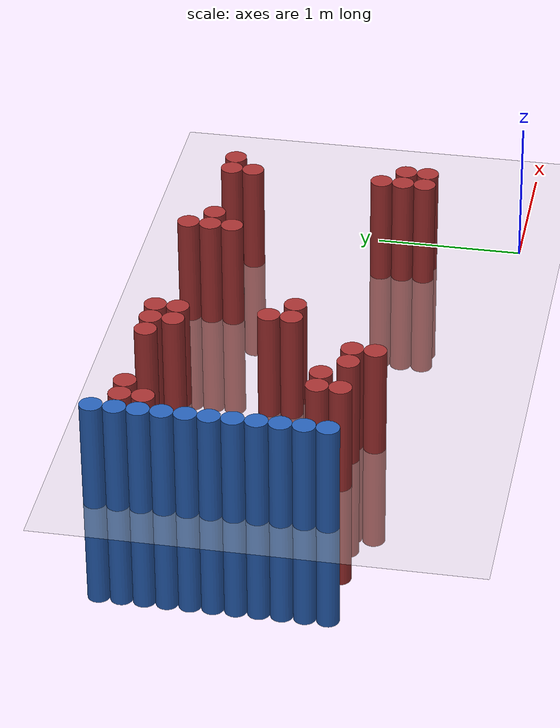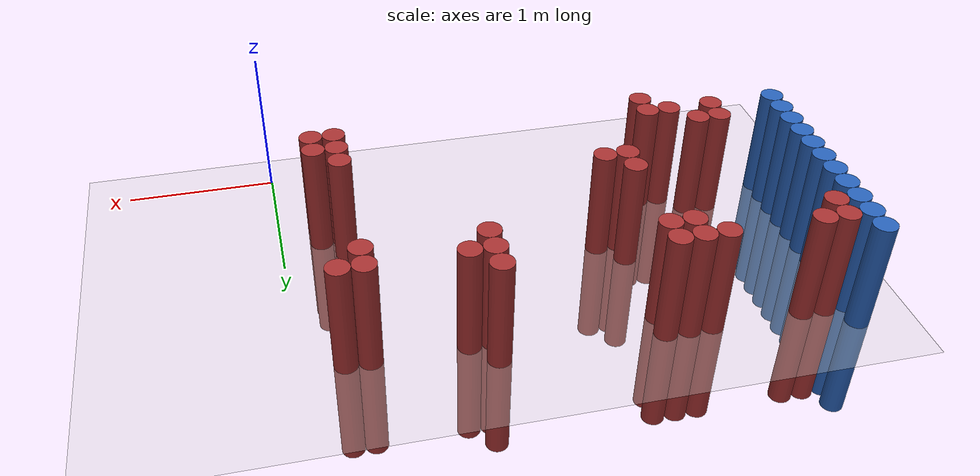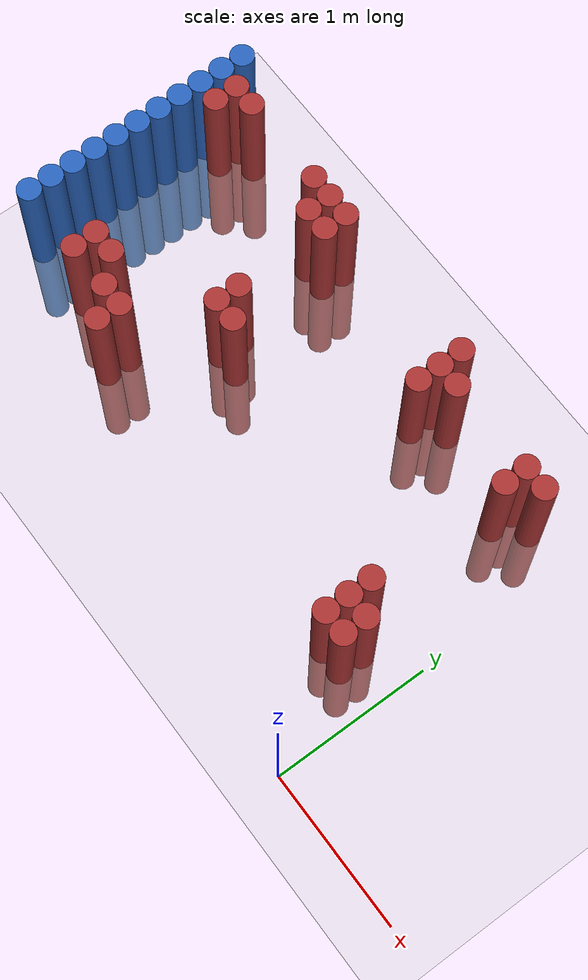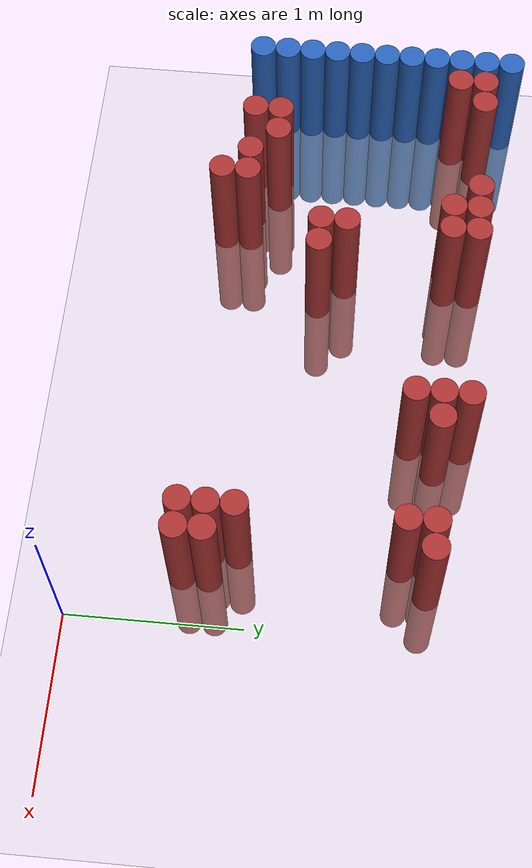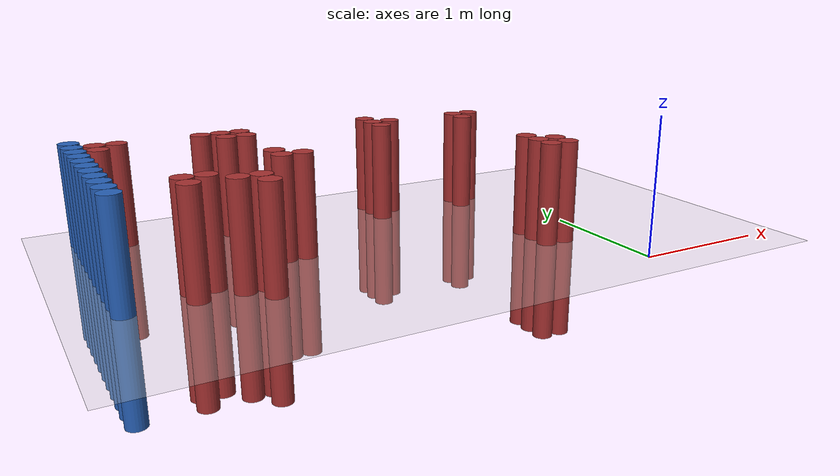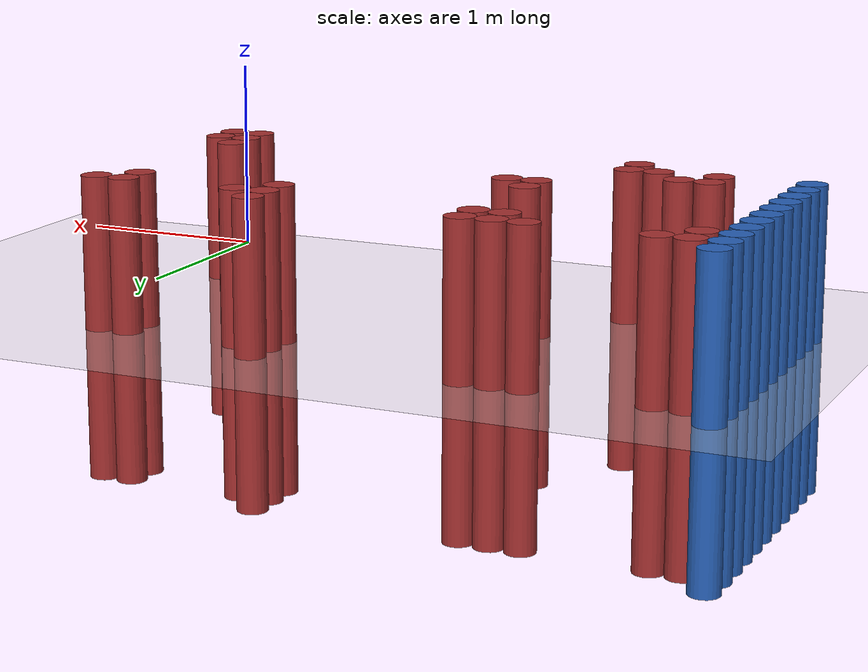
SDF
<sdf version="1.6">
 <world name="default">
  <model name="ground_plane">
   <static>1</static>
   <link name="link">
    <collision name="collision">
     <geometry><plane><normal>0 0 1</normal><size>100 100</size></plane></geometry>
     <surface><friction><ode><mu>100</mu><mu2>50</mu2></ode></friction></surface>
    </collision>
    <visual name="visual">
     <cast_shadows>0</cast_shadows>
     <geometry><plane><normal>0 0 1</normal><size>100 100</size></plane></geometry>
     <material>
      <script><uri>file://media/materials/scripts/gazebo.material</uri><name>Gazebo/Grey</name></script>
     </material>
    </visual>
   </link>
  </model>
  <model name="unit_cylinder_125">
   <static>1</static>
   <pose>-3.425000 0.775000 0.000000 0.000000 0.000000 0.000000</pose>
   <link name="link">
    <inertial>
     <mass>1</mass>
     <inertia><ixx>0.145833</ixx><ixy>0</ixy><ixz>0</ixz><iyy>0.145833</iyy><iyz>0</iyz><izz>0.125</izz></inertia>
    </inertial>
    <collision name="collision">
     <geometry><cylinder><radius>0.075000</radius><length>1.5</length></cylinder></geometry>
    </collision>
    <visual name="visual">
     <geometry><cylinder><radius>0.075000</radius><length>1.5</length></cylinder></geometry>
     <material>
      <ambient>0.152000 0.379000 0.720000 1</ambient>
      <diffuse>0.152000 0.379000 0.720000 1</diffuse>
     </material>
     <material>
      <script><name>Gazebo/Grey</name><uri>file://media/materials/scripts/gazebo.material</uri></script>
     </material>
    </visual>
   </link>
  </model>
  <model name="unit_cylinder_127">
   <static>1</static>
   <pose>-3.425000 0.925000 0.000000 0.000000 0.000000 0.000000</pose>
   <link name="link">
    <inertial>
     <mass>1</mass>
     <inertia><ixx>0.145833</ixx><ixy>0</ixy><ixz>0</ixz><iyy>0.145833</iyy><iyz>0</iyz><izz>0.125</izz></inertia>
    </inertial>
    <collision name="collision">
     <geometry><cylinder><radius>0.075000</radius><length>1.5</length></cylinder></geometry>
    </collision>
    <visual name="visual">
     <geometry><cylinder><radius>0.075000</radius><length>1.5</length></cylinder></geometry>
     <material>
      <ambient>0.152000 0.379000 0.720000 1</ambient>
      <diffuse>0.152000 0.379000 0.720000 1</diffuse>
     </material>
     <material>
      <script><name>Gazebo/Grey</name><uri>file://media/materials/scripts/gazebo.material</uri></script>
     </material>
    </visual>
   </link>
  </model>
  <model name="unit_cylinder_129">
   <static>1</static>
   <pose>-3.425000 1.075000 0.000000 0.000000 0.000000 0.000000</pose>
   <link name="link">
    <inertial>
     <mass>1</mass>
     <inertia><ixx>0.145833</ixx><ixy>0</ixy><ixz>0</ixz><iyy>0.145833</iyy><iyz>0</iyz><izz>0.125</izz></inertia>
    </inertial>
    <collision name="collision">
     <geometry><cylinder><radius>0.075000</radius><length>1.5</length></cylinder></geometry>
    </collision>
    <visual name="visual">
     <geometry><cylinder><radius>0.075000</radius><length>1.5</length></cylinder></geometry>
     <material>
      <ambient>0.152000 0.379000 0.720000 1</ambient>
      <diffuse>0.152000 0.379000 0.720000 1</diffuse>
     </material>
     <material>
      <script><name>Gazebo/Grey</name><uri>file://media/materials/scripts/gazebo.material</uri></script>
     </material>
    </visual>
   </link>
  </model>
  <model name="unit_cylinder_131">
   <static>1</static>
   <pose>-3.425000 1.225000 0.000000 0.000000 0.000000 0.000000</pose>
   <link name="link">
    <inertial>
     <mass>1</mass>
     <inertia><ixx>0.145833</ixx><ixy>0</ixy><ixz>0</ixz><iyy>0.145833</iyy><iyz>0</iyz><izz>0.125</izz></inertia>
    </inertial>
    <collision name="collision">
     <geometry><cylinder><radius>0.075000</radius><length>1.5</length></cylinder></geometry>
    </collision>
    <visual name="visual">
     <geometry><cylinder><radius>0.075000</radius><length>1.5</length></cylinder></geometry>
     <material>
      <ambient>0.152000 0.379000 0.720000 1</ambient>
      <diffuse>0.152000 0.379000 0.720000 1</diffuse>
     </material>
     <material>
      <script><name>Gazebo/Grey</name><uri>file://media/materials/scripts/gazebo.material</uri></script>
     </material>
    </visual>
   </link>
  </model>
  <model name="unit_cylinder_133">
   <static>1</static>
   <pose>-3.425000 1.375000 0.000000 0.000000 0.000000 0.000000</pose>
   <link name="link">
    <inertial>
     <mass>1</mass>
     <inertia><ixx>0.145833</ixx><ixy>0</ixy><ixz>0</ixz><iyy>0.145833</iyy><iyz>0</iyz><izz>0.125</izz></inertia>
    </inertial>
    <collision name="collision">
     <geometry><cylinder><radius>0.075000</radius><length>1.5</length></cylinder></geometry>
    </collision>
    <visual name="visual">
     <geometry><cylinder><radius>0.075000</radius><length>1.5</length></cylinder></geometry>
     <material>
      <ambient>0.152000 0.379000 0.720000 1</ambient>
      <diffuse>0.152000 0.379000 0.720000 1</diffuse>
     </material>
     <material>
      <script><name>Gazebo/Grey</name><uri>file://media/materials/scripts/gazebo.material</uri></script>
     </material>
    </visual>
   </link>
  </model>
  <model name="unit_cylinder_135">
   <static>1</static>
   <pose>-3.425000 1.525000 0.000000 0.000000 0.000000 0.000000</pose>
   <link name="link">
    <inertial>
     <mass>1</mass>
     <inertia><ixx>0.145833</ixx><ixy>0</ixy><ixz>0</ixz><iyy>0.145833</iyy><iyz>0</iyz><izz>0.125</izz></inertia>
    </inertial>
    <collision name="collision">
     <geometry><cylinder><radius>0.075000</radius><length>1.5</length></cylinder></geometry>
    </collision>
    <visual name="visual">
     <geometry><cylinder><radius>0.075000</radius><length>1.5</length></cylinder></geometry>
     <material>
      <ambient>0.152000 0.379000 0.720000 1</ambient>
      <diffuse>0.152000 0.379000 0.720000 1</diffuse>
     </material>
     <material>
      <script><name>Gazebo/Grey</name><uri>file://media/materials/scripts/gazebo.material</uri></script>
     </material>
    </visual>
   </link>
  </model>
  <model name="unit_cylinder_137">
   <static>1</static>
   <pose>-3.425000 1.675000 0.000000 0.000000 0.000000 0.000000</pose>
   <link name="link">
    <inertial>
     <mass>1</mass>
     <inertia><ixx>0.145833</ixx><ixy>0</ixy><ixz>0</ixz><iyy>0.145833</iyy><iyz>0</iyz><izz>0.125</izz></inertia>
    </inertial>
    <collision name="collision">
     <geometry><cylinder><radius>0.075000</radius><length>1.5</length></cylinder></geometry>
    </collision>
    <visual name="visual">
     <geometry><cylinder><radius>0.075000</radius><length>1.5</length></cylinder></geometry>
     <material>
      <ambient>0.152000 0.379000 0.720000 1</ambient>
      <diffuse>0.152000 0.379000 0.720000 1</diffuse>
     </material>
     <material>
      <script><name>Gazebo/Grey</name><uri>file://media/materials/scripts/gazebo.material</uri></script>
     </material>
    </visual>
   </link>
  </model>
  <model name="unit_cylinder_139">
   <static>1</static>
   <pose>-3.425000 1.825000 0.000000 0.000000 0.000000 0.000000</pose>
   <link name="link">
    <inertial>
     <mass>1</mass>
     <inertia><ixx>0.145833</ixx><ixy>0</ixy><ixz>0</ixz><iyy>0.145833</iyy><iyz>0</iyz><izz>0.125</izz></inertia>
    </inertial>
    <collision name="collision">
     <geometry><cylinder><radius>0.075000</radius><length>1.5</length></cylinder></geometry>
    </collision>
    <visual name="visual">
     <geometry><cylinder><radius>0.075000</radius><length>1.5</length></cylinder></geometry>
     <material>
      <ambient>0.152000 0.379000 0.720000 1</ambient>
      <diffuse>0.152000 0.379000 0.720000 1</diffuse>
     </material>
     <material>
      <script><name>Gazebo/Grey</name><uri>file://media/materials/scripts/gazebo.material</uri></script>
     </material>
    </visual>
   </link>
  </model>
  <model name="unit_cylinder_141">
   <static>1</static>
   <pose>-3.425000 1.975000 0.000000 0.000000 0.000000 0.000000</pose>
   <link name="link">
    <inertial>
     <mass>1</mass>
     <inertia><ixx>0.145833</ixx><ixy>0</ixy><ixz>0</ixz><iyy>0.145833</iyy><iyz>0</iyz><izz>0.125</izz></inertia>
    </inertial>
    <collision name="collision">
     <geometry><cylinder><radius>0.075000</radius><length>1.5</length></cylinder></geometry>
    </collision>
    <visual name="visual">
     <geometry><cylinder><radius>0.075000</radius><length>1.5</length></cylinder></geometry>
     <material>
      <ambient>0.152000 0.379000 0.720000 1</ambient>
      <diffuse>0.152000 0.379000 0.720000 1</diffuse>
     </material>
     <material>
      <script><name>Gazebo/Grey</name><uri>file://media/materials/scripts/gazebo.material</uri></script>
     </material>
    </visual>
   </link>
  </model>
  <model name="unit_cylinder_143">
   <static>1</static>
   <pose>-3.425000 2.125000 0.000000 0.000000 0.000000 0.000000</pose>
   <link name="link">
    <inertial>
     <mass>1</mass>
     <inertia><ixx>0.145833</ixx><ixy>0</ixy><ixz>0</ixz><iyy>0.145833</iyy><iyz>0</iyz><izz>0.125</izz></inertia>
    </inertial>
    <collision name="collision">
     <geometry><cylinder><radius>0.075000</radius><length>1.5</length></cylinder></geometry>
    </collision>
    <visual name="visual">
     <geometry><cylinder><radius>0.075000</radius><length>1.5</length></cylinder></geometry>
     <material>
      <ambient>0.152000 0.379000 0.720000 1</ambient>
      <diffuse>0.152000 0.379000 0.720000 1</diffuse>
     </material>
     <material>
      <script><name>Gazebo/Grey</name><uri>file://media/materials/scripts/gazebo.material</uri></script>
     </material>
    </visual>
   </link>
  </model>
  <model name="unit_cylinder_145">
   <static>1</static>
   <pose>-3.425000 2.275000 0.000000 0.000000 0.000000 0.000000</pose>
   <link name="link">
    <inertial>
     <mass>1</mass>
     <inertia><ixx>0.145833</ixx><ixy>0</ixy><ixz>0</ixz><iyy>0.145833</iyy><iyz>0</iyz><izz>0.125</izz></inertia>
    </inertial>
    <collision name="collision">
     <geometry><cylinder><radius>0.075000</radius><length>1.5</length></cylinder></geometry>
    </collision>
    <visual name="visual">
     <geometry><cylinder><radius>0.075000</radius><length>1.5</length></cylinder></geometry>
     <material>
      <ambient>0.152000 0.379000 0.720000 1</ambient>
      <diffuse>0.152000 0.379000 0.720000 1</diffuse>
     </material>
     <material>
      <script><name>Gazebo/Grey</name><uri>file://media/materials/scripts/gazebo.material</uri></script>
     </material>
    </visual>
   </link>
  </model>
  <model name="unit_cylinder_226">
   <static>1</static>
   <pose>-3.425000 0.775000 0.000000 0.000000 0.000000 0.000000</pose>
   <link name="link">
    <inertial>
     <mass>1</mass>
     <inertia><ixx>0.145833</ixx><ixy>0</ixy><ixz>0</ixz><iyy>0.145833</iyy><iyz>0</iyz><izz>0.125</izz></inertia>
    </inertial>
    <collision name="collision">
     <geometry><cylinder><radius>0.075000</radius><length>1.5</length></cylinder></geometry>
    </collision>
    <visual name="visual">
     <geometry><cylinder><radius>0.075000</radius><length>1.5</length></cylinder></geometry>
     <material>
      <ambient>0.152000 0.379000 0.720000 1</ambient>
      <diffuse>0.152000 0.379000 0.720000 1</diffuse>
     </material>
     <material>
      <script><name>Gazebo/Grey</name><uri>file://media/materials/scripts/gazebo.material</uri></script>
     </material>
    </visual>
   </link>
  </model>
  <model name="unit_cylinder_227">
   <static>1</static>
   <pose>-3.425000 0.925000 0.000000 0.000000 0.000000 0.000000</pose>
   <link name="link">
    <inertial>
     <mass>1</mass>
     <inertia><ixx>0.145833</ixx><ixy>0</ixy><ixz>0</ixz><iyy>0.145833</iyy><iyz>0</iyz><izz>0.125</izz></inertia>
    </inertial>
    <collision name="collision">
     <geometry><cylinder><radius>0.075000</radius><length>1.5</length></cylinder></geometry>
    </collision>
    <visual name="visual">
     <geometry><cylinder><radius>0.075000</radius><length>1.5</length></cylinder></geometry>
     <material>
      <ambient>0.152000 0.379000 0.720000 1</ambient>
      <diffuse>0.152000 0.379000 0.720000 1</diffuse>
     </material>
     <material>
      <script><name>Gazebo/Grey</name><uri>file://media/materials/scripts/gazebo.material</uri></script>
     </material>
    </visual>
   </link>
  </model>
  <model name="unit_cylinder_228">
   <static>1</static>
   <pose>-3.425000 1.075000 0.000000 0.000000 0.000000 0.000000</pose>
   <link name="link">
    <inertial>
     <mass>1</mass>
     <inertia><ixx>0.145833</ixx><ixy>0</ixy><ixz>0</ixz><iyy>0.145833</iyy><iyz>0</iyz><izz>0.125</izz></inertia>
    </inertial>
    <collision name="collision">
     <geometry><cylinder><radius>0.075000</radius><length>1.5</length></cylinder></geometry>
    </collision>
    <visual name="visual">
     <geometry><cylinder><radius>0.075000</radius><length>1.5</length></cylinder></geometry>
     <material>
      <ambient>0.152000 0.379000 0.720000 1</ambient>
      <diffuse>0.152000 0.379000 0.720000 1</diffuse>
     </material>
     <material>
      <script><name>Gazebo/Grey</name><uri>file://media/materials/scripts/gazebo.material</uri></script>
     </material>
    </visual>
   </link>
  </model>
  <model name="unit_cylinder_229">
   <static>1</static>
   <pose>-3.425000 1.225000 0.000000 0.000000 0.000000 0.000000</pose>
   <link name="link">
    <inertial>
     <mass>1</mass>
     <inertia><ixx>0.145833</ixx><ixy>0</ixy><ixz>0</ixz><iyy>0.145833</iyy><iyz>0</iyz><izz>0.125</izz></inertia>
    </inertial>
    <collision name="collision">
     <geometry><cylinder><radius>0.075000</radius><length>1.5</length></cylinder></geometry>
    </collision>
    <visual name="visual">
     <geometry><cylinder><radius>0.075000</radius><length>1.5</length></cylinder></geometry>
     <material>
      <ambient>0.152000 0.379000 0.720000 1</ambient>
      <diffuse>0.152000 0.379000 0.720000 1</diffuse>
     </material>
     <material>
      <script><name>Gazebo/Grey</name><uri>file://media/materials/scripts/gazebo.material</uri></script>
     </material>
    </visual>
   </link>
  </model>
  <model name="unit_cylinder_230">
   <static>1</static>
   <pose>-3.425000 1.375000 0.000000 0.000000 0.000000 0.000000</pose>
   <link name="link">
    <inertial>
     <mass>1</mass>
     <inertia><ixx>0.145833</ixx><ixy>0</ixy><ixz>0</ixz><iyy>0.145833</iyy><iyz>0</iyz><izz>0.125</izz></inertia>
    </inertial>
    <collision name="collision">
     <geometry><cylinder><radius>0.075000</radius><length>1.5</length></cylinder></geometry>
    </collision>
    <visual name="visual">
     <geometry><cylinder><radius>0.075000</radius><length>1.5</length></cylinder></geometry>
     <material>
      <ambient>0.152000 0.379000 0.720000 1</ambient>
      <diffuse>0.152000 0.379000 0.720000 1</diffuse>
     </material>
     <material>
      <script><name>Gazebo/Grey</name><uri>file://media/materials/scripts/gazebo.material</uri></script>
     </material>
    </visual>
   </link>
  </model>
  <model name="unit_cylinder_231">
   <static>1</static>
   <pose>-3.425000 1.525000 0.000000 0.000000 0.000000 0.000000</pose>
   <link name="link">
    <inertial>
     <mass>1</mass>
     <inertia><ixx>0.145833</ixx><ixy>0</ixy><ixz>0</ixz><iyy>0.145833</iyy><iyz>0</iyz><izz>0.125</izz></inertia>
    </inertial>
    <collision name="collision">
     <geometry><cylinder><radius>0.075000</radius><length>1.5</length></cylinder></geometry>
    </collision>
    <visual name="visual">
     <geometry><cylinder><radius>0.075000</radius><length>1.5</length></cylinder></geometry>
     <material>
      <ambient>0.152000 0.379000 0.720000 1</ambient>
      <diffuse>0.152000 0.379000 0.720000 1</diffuse>
     </material>
     <material>
      <script><name>Gazebo/Grey</name><uri>file://media/materials/scripts/gazebo.material</uri></script>
     </material>
    </visual>
   </link>
  </model>
  <model name="unit_cylinder_232">
   <static>1</static>
   <pose>-3.425000 1.675000 0.000000 0.000000 0.000000 0.000000</pose>
   <link name="link">
    <inertial>
     <mass>1</mass>
     <inertia><ixx>0.145833</ixx><ixy>0</ixy><ixz>0</ixz><iyy>0.145833</iyy><iyz>0</iyz><izz>0.125</izz></inertia>
    </inertial>
    <collision name="collision">
     <geometry><cylinder><radius>0.075000</radius><length>1.5</length></cylinder></geometry>
    </collision>
    <visual name="visual">
     <geometry><cylinder><radius>0.075000</radius><length>1.5</length></cylinder></geometry>
     <material>
      <ambient>0.152000 0.379000 0.720000 1</ambient>
      <diffuse>0.152000 0.379000 0.720000 1</diffuse>
     </material>
     <material>
      <script><name>Gazebo/Grey</name><uri>file://media/materials/scripts/gazebo.material</uri></script>
     </material>
    </visual>
   </link>
  </model>
  <model name="unit_cylinder_233">
   <static>1</static>
   <pose>-3.425000 1.825000 0.000000 0.000000 0.000000 0.000000</pose>
   <link name="link">
    <inertial>
     <mass>1</mass>
     <inertia><ixx>0.145833</ixx><ixy>0</ixy><ixz>0</ixz><iyy>0.145833</iyy><iyz>0</iyz><izz>0.125</izz></inertia>
    </inertial>
    <collision name="collision">
     <geometry><cylinder><radius>0.075000</radius><length>1.5</length></cylinder></geometry>
    </collision>
    <visual name="visual">
     <geometry><cylinder><radius>0.075000</radius><length>1.5</length></cylinder></geometry>
     <material>
      <ambient>0.152000 0.379000 0.720000 1</ambient>
      <diffuse>0.152000 0.379000 0.720000 1</diffuse>
     </material>
     <material>
      <script><name>Gazebo/Grey</name><uri>file://media/materials/scripts/gazebo.material</uri></script>
     </material>
    </visual>
   </link>
  </model>
  <model name="unit_cylinder_234">
   <static>1</static>
   <pose>-3.425000 1.975000 0.000000 0.000000 0.000000 0.000000</pose>
   <link name="link">
    <inertial>
     <mass>1</mass>
     <inertia><ixx>0.145833</ixx><ixy>0</ixy><ixz>0</ixz><iyy>0.145833</iyy><iyz>0</iyz><izz>0.125</izz></inertia>
    </inertial>
    <collision name="collision">
     <geometry><cylinder><radius>0.075000</radius><length>1.5</length></cylinder></geometry>
    </collision>
    <visual name="visual">
     <geometry><cylinder><radius>0.075000</radius><length>1.5</length></cylinder></geometry>
     <material>
      <ambient>0.152000 0.379000 0.720000 1</ambient>
      <diffuse>0.152000 0.379000 0.720000 1</diffuse>
     </material>
     <material>
      <script><name>Gazebo/Grey</name><uri>file://media/materials/scripts/gazebo.material</uri></script>
     </material>
    </visual>
   </link>
  </model>
  <model name="unit_cylinder_235">
   <static>1</static>
   <pose>-3.425000 2.125000 0.000000 0.000000 0.000000 0.000000</pose>
   <link name="link">
    <inertial>
     <mass>1</mass>
     <inertia><ixx>0.145833</ixx><ixy>0</ixy><ixz>0</ixz><iyy>0.145833</iyy><iyz>0</iyz><izz>0.125</izz></inertia>
    </inertial>
    <collision name="collision">
     <geometry><cylinder><radius>0.075000</radius><length>1.5</length></cylinder></geometry>
    </collision>
    <visual name="visual">
     <geometry><cylinder><radius>0.075000</radius><length>1.5</length></cylinder></geometry>
     <material>
      <ambient>0.152000 0.379000 0.720000 1</ambient>
      <diffuse>0.152000 0.379000 0.720000 1</diffuse>
     </material>
     <material>
      <script><name>Gazebo/Grey</name><uri>file://media/materials/scripts/gazebo.material</uri></script>
     </material>
    </visual>
   </link>
  </model>
  <model name="unit_cylinder_236">
   <static>1</static>
   <pose>-3.425000 2.275000 0.000000 0.000000 0.000000 0.000000</pose>
   <link name="link">
    <inertial>
     <mass>1</mass>
     <inertia><ixx>0.145833</ixx><ixy>0</ixy><ixz>0</ixz><iyy>0.145833</iyy><iyz>0</iyz><izz>0.125</izz></inertia>
    </inertial>
    <collision name="collision">
     <geometry><cylinder><radius>0.075000</radius><length>1.5</length></cylinder></geometry>
    </collision>
    <visual name="visual">
     <geometry><cylinder><radius>0.075000</radius><length>1.5</length></cylinder></geometry>
     <material>
      <ambient>0.152000 0.379000 0.720000 1</ambient>
      <diffuse>0.152000 0.379000 0.720000 1</diffuse>
     </material>
     <material>
      <script><name>Gazebo/Grey</name><uri>file://media/materials/scripts/gazebo.material</uri></script>
     </material>
    </visual>
   </link>
  </model>
  <model name="unit_cylinder_267">
   <static>1</static>
   <pose>-3.275000 1.975000 0.000000 0.000000 0.000000 0.000000</pose>
   <link name="link">
    <inertial>
     <mass>1</mass>
     <inertia><ixx>0.145833</ixx><ixy>0</ixy><ixz>0</ixz><iyy>0.145833</iyy><iyz>0</iyz><izz>0.125</izz></inertia>
    </inertial>
    <collision name="collision">
     <geometry><cylinder><radius>0.075000</radius><length>1.5</length></cylinder></geometry>
    </collision>
    <visual name="visual">
     <geometry><cylinder><radius>0.075000</radius><length>1.5</length></cylinder></geometry>
     <material>
      <ambient>0.648000 0.192000 0.192000 1</ambient>
      <diffuse>0.648000 0.192000 0.192000 1</diffuse>
     </material>
     <material>
      <script><name>Gazebo/Grey</name><uri>file://media/materials/scripts/gazebo.material</uri></script>
     </material>
    </visual>
   </link>
  </model>
  <model name="unit_cylinder_268">
   <static>1</static>
   <pose>-3.275000 2.125000 0.000000 0.000000 0.000000 0.000000</pose>
   <link name="link">
    <inertial>
     <mass>1</mass>
     <inertia><ixx>0.145833</ixx><ixy>0</ixy><ixz>0</ixz><iyy>0.145833</iyy><iyz>0</iyz><izz>0.125</izz></inertia>
    </inertial>
    <collision name="collision">
     <geometry><cylinder><radius>0.075000</radius><length>1.5</length></cylinder></geometry>
    </collision>
    <visual name="visual">
     <geometry><cylinder><radius>0.075000</radius><length>1.5</length></cylinder></geometry>
     <material>
      <ambient>0.648000 0.192000 0.192000 1</ambient>
      <diffuse>0.648000 0.192000 0.192000 1</diffuse>
     </material>
     <material>
      <script><name>Gazebo/Grey</name><uri>file://media/materials/scripts/gazebo.material</uri></script>
     </material>
    </visual>
   </link>
  </model>
  <model name="unit_cylinder_279">
   <static>1</static>
   <pose>-3.125000 2.125000 0.000000 0.000000 0.000000 0.000000</pose>
   <link name="link">
    <inertial>
     <mass>1</mass>
     <inertia><ixx>0.145833</ixx><ixy>0</ixy><ixz>0</ixz><iyy>0.145833</iyy><iyz>0</iyz><izz>0.125</izz></inertia>
    </inertial>
    <collision name="collision">
     <geometry><cylinder><radius>0.075000</radius><length>1.5</length></cylinder></geometry>
    </collision>
    <visual name="visual">
     <geometry><cylinder><radius>0.075000</radius><length>1.5</length></cylinder></geometry>
     <material>
      <ambient>0.648000 0.192000 0.192000 1</ambient>
      <diffuse>0.648000 0.192000 0.192000 1</diffuse>
     </material>
     <material>
      <script><name>Gazebo/Grey</name><uri>file://media/materials/scripts/gazebo.material</uri></script>
     </material>
    </visual>
   </link>
  </model>
  <model name="unit_cylinder_289">
   <static>1</static>
   <pose>-2.975000 0.775000 0.000000 0.000000 0.000000 0.000000</pose>
   <link name="link">
    <inertial>
     <mass>1</mass>
     <inertia><ixx>0.145833</ixx><ixy>0</ixy><ixz>0</ixz><iyy>0.145833</iyy><iyz>0</iyz><izz>0.125</izz></inertia>
    </inertial>
    <collision name="collision">
     <geometry><cylinder><radius>0.075000</radius><length>1.5</length></cylinder></geometry>
    </collision>
    <visual name="visual">
     <geometry><cylinder><radius>0.075000</radius><length>1.5</length></cylinder></geometry>
     <material>
      <ambient>0.648000 0.192000 0.192000 1</ambient>
      <diffuse>0.648000 0.192000 0.192000 1</diffuse>
     </material>
     <material>
      <script><name>Gazebo/Grey</name><uri>file://media/materials/scripts/gazebo.material</uri></script>
     </material>
    </visual>
   </link>
  </model>
  <model name="unit_cylinder_290">
   <static>1</static>
   <pose>-2.975000 0.925000 0.000000 0.000000 0.000000 0.000000</pose>
   <link name="link">
    <inertial>
     <mass>1</mass>
     <inertia><ixx>0.145833</ixx><ixy>0</ixy><ixz>0</ixz><iyy>0.145833</iyy><iyz>0</iyz><izz>0.125</izz></inertia>
    </inertial>
    <collision name="collision">
     <geometry><cylinder><radius>0.075000</radius><length>1.5</length></cylinder></geometry>
    </collision>
    <visual name="visual">
     <geometry><cylinder><radius>0.075000</radius><length>1.5</length></cylinder></geometry>
     <material>
      <ambient>0.648000 0.192000 0.192000 1</ambient>
      <diffuse>0.648000 0.192000 0.192000 1</diffuse>
     </material>
     <material>
      <script><name>Gazebo/Grey</name><uri>file://media/materials/scripts/gazebo.material</uri></script>
     </material>
    </visual>
   </link>
  </model>
  <model name="unit_cylinder_297">
   <static>1</static>
   <pose>-2.825000 0.925000 0.000000 0.000000 0.000000 0.000000</pose>
   <link name="link">
    <inertial>
     <mass>1</mass>
     <inertia><ixx>0.145833</ixx><ixy>0</ixy><ixz>0</ixz><iyy>0.145833</iyy><iyz>0</iyz><izz>0.125</izz></inertia>
    </inertial>
    <collision name="collision">
     <geometry><cylinder><radius>0.075000</radius><length>1.5</length></cylinder></geometry>
    </collision>
    <visual name="visual">
     <geometry><cylinder><radius>0.075000</radius><length>1.5</length></cylinder></geometry>
     <material>
      <ambient>0.648000 0.192000 0.192000 1</ambient>
      <diffuse>0.648000 0.192000 0.192000 1</diffuse>
     </material>
     <material>
      <script><name>Gazebo/Grey</name><uri>file://media/materials/scripts/gazebo.material</uri></script>
     </material>
    </visual>
   </link>
  </model>
  <model name="unit_cylinder_304">
   <static>1</static>
   <pose>-2.675000 0.775000 0.000000 0.000000 0.000000 0.000000</pose>
   <link name="link">
    <inertial>
     <mass>1</mass>
     <inertia><ixx>0.145833</ixx><ixy>0</ixy><ixz>0</ixz><iyy>0.145833</iyy><iyz>0</iyz><izz>0.125</izz></inertia>
    </inertial>
    <collision name="collision">
     <geometry><cylinder><radius>0.075000</radius><length>1.5</length></cylinder></geometry>
    </collision>
    <visual name="visual">
     <geometry><cylinder><radius>0.075000</radius><length>1.5</length></cylinder></geometry>
     <material>
      <ambient>0.648000 0.192000 0.192000 1</ambient>
      <diffuse>0.648000 0.192000 0.192000 1</diffuse>
     </material>
     <material>
      <script><name>Gazebo/Grey</name><uri>file://media/materials/scripts/gazebo.material</uri></script>
     </material>
    </visual>
   </link>
  </model>
  <model name="unit_cylinder_313">
   <static>1</static>
   <pose>-2.525000 0.625000 0.000000 0.000000 0.000000 0.000000</pose>
   <link name="link">
    <inertial>
     <mass>1</mass>
     <inertia><ixx>0.145833</ixx><ixy>0</ixy><ixz>0</ixz><iyy>0.145833</iyy><iyz>0</iyz><izz>0.125</izz></inertia>
    </inertial>
    <collision name="collision">
     <geometry><cylinder><radius>0.075000</radius><length>1.5</length></cylinder></geometry>
    </collision>
    <visual name="visual">
     <geometry><cylinder><radius>0.075000</radius><length>1.5</length></cylinder></geometry>
     <material>
      <ambient>0.648000 0.192000 0.192000 1</ambient>
      <diffuse>0.648000 0.192000 0.192000 1</diffuse>
     </material>
     <material>
      <script><name>Gazebo/Grey</name><uri>file://media/materials/scripts/gazebo.material</uri></script>
     </material>
    </visual>
   </link>
  </model>
  <model name="unit_cylinder_314">
   <static>1</static>
   <pose>-2.525000 0.775000 0.000000 0.000000 0.000000 0.000000</pose>
   <link name="link">
    <inertial>
     <mass>1</mass>
     <inertia><ixx>0.145833</ixx><ixy>0</ixy><ixz>0</ixz><iyy>0.145833</iyy><iyz>0</iyz><izz>0.125</izz></inertia>
    </inertial>
    <collision name="collision">
     <geometry><cylinder><radius>0.075000</radius><length>1.5</length></cylinder></geometry>
    </collision>
    <visual name="visual">
     <geometry><cylinder><radius>0.075000</radius><length>1.5</length></cylinder></geometry>
     <material>
      <ambient>0.648000 0.192000 0.192000 1</ambient>
      <diffuse>0.648000 0.192000 0.192000 1</diffuse>
     </material>
     <material>
      <script><name>Gazebo/Grey</name><uri>file://media/materials/scripts/gazebo.material</uri></script>
     </material>
    </visual>
   </link>
  </model>
  <model name="unit_cylinder_315">
   <static>1</static>
   <pose>-2.525000 2.125000 0.000000 0.000000 0.000000 0.000000</pose>
   <link name="link">
    <inertial>
     <mass>1</mass>
     <inertia><ixx>0.145833</ixx><ixy>0</ixy><ixz>0</ixz><iyy>0.145833</iyy><iyz>0</iyz><izz>0.125</izz></inertia>
    </inertial>
    <collision name="collision">
     <geometry><cylinder><radius>0.075000</radius><length>1.5</length></cylinder></geometry>
    </collision>
    <visual name="visual">
     <geometry><cylinder><radius>0.075000</radius><length>1.5</length></cylinder></geometry>
     <material>
      <ambient>0.648000 0.192000 0.192000 1</ambient>
      <diffuse>0.648000 0.192000 0.192000 1</diffuse>
     </material>
     <material>
      <script><name>Gazebo/Grey</name><uri>file://media/materials/scripts/gazebo.material</uri></script>
     </material>
    </visual>
   </link>
  </model>
  <model name="unit_cylinder_325">
   <static>1</static>
   <pose>-2.375000 1.975000 0.000000 0.000000 0.000000 0.000000</pose>
   <link name="link">
    <inertial>
     <mass>1</mass>
     <inertia><ixx>0.145833</ixx><ixy>0</ixy><ixz>0</ixz><iyy>0.145833</iyy><iyz>0</iyz><izz>0.125</izz></inertia>
    </inertial>
    <collision name="collision">
     <geometry><cylinder><radius>0.075000</radius><length>1.5</length></cylinder></geometry>
    </collision>
    <visual name="visual">
     <geometry><cylinder><radius>0.075000</radius><length>1.5</length></cylinder></geometry>
     <material>
      <ambient>0.648000 0.192000 0.192000 1</ambient>
      <diffuse>0.648000 0.192000 0.192000 1</diffuse>
     </material>
     <material>
      <script><name>Gazebo/Grey</name><uri>file://media/materials/scripts/gazebo.material</uri></script>
     </material>
    </visual>
   </link>
  </model>
  <model name="unit_cylinder_326">
   <static>1</static>
   <pose>-2.375000 2.125000 0.000000 0.000000 0.000000 0.000000</pose>
   <link name="link">
    <inertial>
     <mass>1</mass>
     <inertia><ixx>0.145833</ixx><ixy>0</ixy><ixz>0</ixz><iyy>0.145833</iyy><iyz>0</iyz><izz>0.125</izz></inertia>
    </inertial>
    <collision name="collision">
     <geometry><cylinder><radius>0.075000</radius><length>1.5</length></cylinder></geometry>
    </collision>
    <visual name="visual">
     <geometry><cylinder><radius>0.075000</radius><length>1.5</length></cylinder></geometry>
     <material>
      <ambient>0.648000 0.192000 0.192000 1</ambient>
      <diffuse>0.648000 0.192000 0.192000 1</diffuse>
     </material>
     <material>
      <script><name>Gazebo/Grey</name><uri>file://media/materials/scripts/gazebo.material</uri></script>
     </material>
    </visual>
   </link>
  </model>
  <model name="unit_cylinder_334">
   <static>1</static>
   <pose>-2.225000 1.225000 0.000000 0.000000 0.000000 0.000000</pose>
   <link name="link">
    <inertial>
     <mass>1</mass>
     <inertia><ixx>0.145833</ixx><ixy>0</ixy><ixz>0</ixz><iyy>0.145833</iyy><iyz>0</iyz><izz>0.125</izz></inertia>
    </inertial>
    <collision name="collision">
     <geometry><cylinder><radius>0.075000</radius><length>1.5</length></cylinder></geometry>
    </collision>
    <visual name="visual">
     <geometry><cylinder><radius>0.075000</radius><length>1.5</length></cylinder></geometry>
     <material>
      <ambient>0.648000 0.192000 0.192000 1</ambient>
      <diffuse>0.648000 0.192000 0.192000 1</diffuse>
     </material>
     <material>
      <script><name>Gazebo/Grey</name><uri>file://media/materials/scripts/gazebo.material</uri></script>
     </material>
    </visual>
   </link>
  </model>
  <model name="unit_cylinder_335">
   <static>1</static>
   <pose>-2.225000 1.375000 0.000000 0.000000 0.000000 0.000000</pose>
   <link name="link">
    <inertial>
     <mass>1</mass>
     <inertia><ixx>0.145833</ixx><ixy>0</ixy><ixz>0</ixz><iyy>0.145833</iyy><iyz>0</iyz><izz>0.125</izz></inertia>
    </inertial>
    <collision name="collision">
     <geometry><cylinder><radius>0.075000</radius><length>1.5</length></cylinder></geometry>
    </collision>
    <visual name="visual">
     <geometry><cylinder><radius>0.075000</radius><length>1.5</length></cylinder></geometry>
     <material>
      <ambient>0.648000 0.192000 0.192000 1</ambient>
      <diffuse>0.648000 0.192000 0.192000 1</diffuse>
     </material>
     <material>
      <script><name>Gazebo/Grey</name><uri>file://media/materials/scripts/gazebo.material</uri></script>
     </material>
    </visual>
   </link>
  </model>
  <model name="unit_cylinder_336">
   <static>1</static>
   <pose>-2.225000 1.975000 0.000000 0.000000 0.000000 0.000000</pose>
   <link name="link">
    <inertial>
     <mass>1</mass>
     <inertia><ixx>0.145833</ixx><ixy>0</ixy><ixz>0</ixz><iyy>0.145833</iyy><iyz>0</iyz><izz>0.125</izz></inertia>
    </inertial>
    <collision name="collision">
     <geometry><cylinder><radius>0.075000</radius><length>1.5</length></cylinder></geometry>
    </collision>
    <visual name="visual">
     <geometry><cylinder><radius>0.075000</radius><length>1.5</length></cylinder></geometry>
     <material>
      <ambient>0.648000 0.192000 0.192000 1</ambient>
      <diffuse>0.648000 0.192000 0.192000 1</diffuse>
     </material>
     <material>
      <script><name>Gazebo/Grey</name><uri>file://media/materials/scripts/gazebo.material</uri></script>
     </material>
    </visual>
   </link>
  </model>
  <model name="unit_cylinder_337">
   <static>1</static>
   <pose>-2.225000 2.125000 0.000000 0.000000 0.000000 0.000000</pose>
   <link name="link">
    <inertial>
     <mass>1</mass>
     <inertia><ixx>0.145833</ixx><ixy>0</ixy><ixz>0</ixz><iyy>0.145833</iyy><iyz>0</iyz><izz>0.125</izz></inertia>
    </inertial>
    <collision name="collision">
     <geometry><cylinder><radius>0.075000</radius><length>1.5</length></cylinder></geometry>
    </collision>
    <visual name="visual">
     <geometry><cylinder><radius>0.075000</radius><length>1.5</length></cylinder></geometry>
     <material>
      <ambient>0.648000 0.192000 0.192000 1</ambient>
      <diffuse>0.648000 0.192000 0.192000 1</diffuse>
     </material>
     <material>
      <script><name>Gazebo/Grey</name><uri>file://media/materials/scripts/gazebo.material</uri></script>
     </material>
    </visual>
   </link>
  </model>
  <model name="unit_cylinder_345">
   <static>1</static>
   <pose>-2.075000 1.225000 0.000000 0.000000 0.000000 0.000000</pose>
   <link name="link">
    <inertial>
     <mass>1</mass>
     <inertia><ixx>0.145833</ixx><ixy>0</ixy><ixz>0</ixz><iyy>0.145833</iyy><iyz>0</iyz><izz>0.125</izz></inertia>
    </inertial>
    <collision name="collision">
     <geometry><cylinder><radius>0.075000</radius><length>1.5</length></cylinder></geometry>
    </collision>
    <visual name="visual">
     <geometry><cylinder><radius>0.075000</radius><length>1.5</length></cylinder></geometry>
     <material>
      <ambient>0.648000 0.192000 0.192000 1</ambient>
      <diffuse>0.648000 0.192000 0.192000 1</diffuse>
     </material>
     <material>
      <script><name>Gazebo/Grey</name><uri>file://media/materials/scripts/gazebo.material</uri></script>
     </material>
    </visual>
   </link>
  </model>
  <model name="unit_cylinder_361">
   <static>1</static>
   <pose>-1.175000 1.825000 0.000000 0.000000 0.000000 0.000000</pose>
   <link name="link">
    <inertial>
     <mass>1</mass>
     <inertia><ixx>0.145833</ixx><ixy>0</ixy><ixz>0</ixz><iyy>0.145833</iyy><iyz>0</iyz><izz>0.125</izz></inertia>
    </inertial>
    <collision name="collision">
     <geometry><cylinder><radius>0.075000</radius><length>1.5</length></cylinder></geometry>
    </collision>
    <visual name="visual">
     <geometry><cylinder><radius>0.075000</radius><length>1.5</length></cylinder></geometry>
     <material>
      <ambient>0.648000 0.192000 0.192000 1</ambient>
      <diffuse>0.648000 0.192000 0.192000 1</diffuse>
     </material>
     <material>
      <script><name>Gazebo/Grey</name><uri>file://media/materials/scripts/gazebo.material</uri></script>
     </material>
    </visual>
   </link>
  </model>
  <model name="unit_cylinder_362">
   <static>1</static>
   <pose>-1.175000 1.975000 0.000000 0.000000 0.000000 0.000000</pose>
   <link name="link">
    <inertial>
     <mass>1</mass>
     <inertia><ixx>0.145833</ixx><ixy>0</ixy><ixz>0</ixz><iyy>0.145833</iyy><iyz>0</iyz><izz>0.125</izz></inertia>
    </inertial>
    <collision name="collision">
     <geometry><cylinder><radius>0.075000</radius><length>1.5</length></cylinder></geometry>
    </collision>
    <visual name="visual">
     <geometry><cylinder><radius>0.075000</radius><length>1.5</length></cylinder></geometry>
     <material>
      <ambient>0.648000 0.192000 0.192000 1</ambient>
      <diffuse>0.648000 0.192000 0.192000 1</diffuse>
     </material>
     <material>
      <script><name>Gazebo/Grey</name><uri>file://media/materials/scripts/gazebo.material</uri></script>
     </material>
    </visual>
   </link>
  </model>
  <model name="unit_cylinder_363">
   <static>1</static>
   <pose>-1.175000 2.125000 0.000000 0.000000 0.000000 0.000000</pose>
   <link name="link">
    <inertial>
     <mass>1</mass>
     <inertia><ixx>0.145833</ixx><ixy>0</ixy><ixz>0</ixz><iyy>0.145833</iyy><iyz>0</iyz><izz>0.125</izz></inertia>
    </inertial>
    <collision name="collision">
     <geometry><cylinder><radius>0.075000</radius><length>1.5</length></cylinder></geometry>
    </collision>
    <visual name="visual">
     <geometry><cylinder><radius>0.075000</radius><length>1.5</length></cylinder></geometry>
     <material>
      <ambient>0.648000 0.192000 0.192000 1</ambient>
      <diffuse>0.648000 0.192000 0.192000 1</diffuse>
     </material>
     <material>
      <script><name>Gazebo/Grey</name><uri>file://media/materials/scripts/gazebo.material</uri></script>
     </material>
    </visual>
   </link>
  </model>
  <model name="unit_cylinder_365">
   <static>1</static>
   <pose>-1.025000 1.975000 0.000000 0.000000 0.000000 0.000000</pose>
   <link name="link">
    <inertial>
     <mass>1</mass>
     <inertia><ixx>0.145833</ixx><ixy>0</ixy><ixz>0</ixz><iyy>0.145833</iyy><iyz>0</iyz><izz>0.125</izz></inertia>
    </inertial>
    <collision name="collision">
     <geometry><cylinder><radius>0.075000</radius><length>1.5</length></cylinder></geometry>
    </collision>
    <visual name="visual">
     <geometry><cylinder><radius>0.075000</radius><length>1.5</length></cylinder></geometry>
     <material>
      <ambient>0.648000 0.192000 0.192000 1</ambient>
      <diffuse>0.648000 0.192000 0.192000 1</diffuse>
     </material>
     <material>
      <script><name>Gazebo/Grey</name><uri>file://media/materials/scripts/gazebo.material</uri></script>
     </material>
    </visual>
   </link>
  </model>
  <model name="unit_cylinder_381">
   <static>1</static>
   <pose>-0.425000 0.625000 0.000000 0.000000 0.000000 0.000000</pose>
   <link name="link">
    <inertial>
     <mass>1</mass>
     <inertia><ixx>0.145833</ixx><ixy>0</ixy><ixz>0</ixz><iyy>0.145833</iyy><iyz>0</iyz><izz>0.125</izz></inertia>
    </inertial>
    <collision name="collision">
     <geometry><cylinder><radius>0.075000</radius><length>1.5</length></cylinder></geometry>
    </collision>
    <visual name="visual">
     <geometry><cylinder><radius>0.075000</radius><length>1.5</length></cylinder></geometry>
     <material>
      <ambient>0.648000 0.192000 0.192000 1</ambient>
      <diffuse>0.648000 0.192000 0.192000 1</diffuse>
     </material>
     <material>
      <script><name>Gazebo/Grey</name><uri>file://media/materials/scripts/gazebo.material</uri></script>
     </material>
    </visual>
   </link>
  </model>
  <model name="unit_cylinder_382">
   <static>1</static>
   <pose>-0.425000 0.775000 0.000000 0.000000 0.000000 0.000000</pose>
   <link name="link">
    <inertial>
     <mass>1</mass>
     <inertia><ixx>0.145833</ixx><ixy>0</ixy><ixz>0</ixz><iyy>0.145833</iyy><iyz>0</iyz><izz>0.125</izz></inertia>
    </inertial>
    <collision name="collision">
     <geometry><cylinder><radius>0.075000</radius><length>1.5</length></cylinder></geometry>
    </collision>
    <visual name="visual">
     <geometry><cylinder><radius>0.075000</radius><length>1.5</length></cylinder></geometry>
     <material>
      <ambient>0.648000 0.192000 0.192000 1</ambient>
      <diffuse>0.648000 0.192000 0.192000 1</diffuse>
     </material>
     <material>
      <script><name>Gazebo/Grey</name><uri>file://media/materials/scripts/gazebo.material</uri></script>
     </material>
    </visual>
   </link>
  </model>
  <model name="unit_cylinder_383">
   <static>1</static>
   <pose>-0.425000 0.925000 0.000000 0.000000 0.000000 0.000000</pose>
   <link name="link">
    <inertial>
     <mass>1</mass>
     <inertia><ixx>0.145833</ixx><ixy>0</ixy><ixz>0</ixz><iyy>0.145833</iyy><iyz>0</iyz><izz>0.125</izz></inertia>
    </inertial>
    <collision name="collision">
     <geometry><cylinder><radius>0.075000</radius><length>1.5</length></cylinder></geometry>
    </collision>
    <visual name="visual">
     <geometry><cylinder><radius>0.075000</radius><length>1.5</length></cylinder></geometry>
     <material>
      <ambient>0.648000 0.192000 0.192000 1</ambient>
      <diffuse>0.648000 0.192000 0.192000 1</diffuse>
     </material>
     <material>
      <script><name>Gazebo/Grey</name><uri>file://media/materials/scripts/gazebo.material</uri></script>
     </material>
    </visual>
   </link>
  </model>
  <model name="unit_cylinder_384">
   <static>1</static>
   <pose>-0.425000 1.825000 0.000000 0.000000 0.000000 0.000000</pose>
   <link name="link">
    <inertial>
     <mass>1</mass>
     <inertia><ixx>0.145833</ixx><ixy>0</ixy><ixz>0</ixz><iyy>0.145833</iyy><iyz>0</iyz><izz>0.125</izz></inertia>
    </inertial>
    <collision name="collision">
     <geometry><cylinder><radius>0.075000</radius><length>1.5</length></cylinder></geometry>
    </collision>
    <visual name="visual">
     <geometry><cylinder><radius>0.075000</radius><length>1.5</length></cylinder></geometry>
     <material>
      <ambient>0.648000 0.192000 0.192000 1</ambient>
      <diffuse>0.648000 0.192000 0.192000 1</diffuse>
     </material>
     <material>
      <script><name>Gazebo/Grey</name><uri>file://media/materials/scripts/gazebo.material</uri></script>
     </material>
    </visual>
   </link>
  </model>
  <model name="unit_cylinder_385">
   <static>1</static>
   <pose>-0.425000 1.975000 0.000000 0.000000 0.000000 0.000000</pose>
   <link name="link">
    <inertial>
     <mass>1</mass>
     <inertia><ixx>0.145833</ixx><ixy>0</ixy><ixz>0</ixz><iyy>0.145833</iyy><iyz>0</iyz><izz>0.125</izz></inertia>
    </inertial>
    <collision name="collision">
     <geometry><cylinder><radius>0.075000</radius><length>1.5</length></cylinder></geometry>
    </collision>
    <visual name="visual">
     <geometry><cylinder><radius>0.075000</radius><length>1.5</length></cylinder></geometry>
     <material>
      <ambient>0.648000 0.192000 0.192000 1</ambient>
      <diffuse>0.648000 0.192000 0.192000 1</diffuse>
     </material>
     <material>
      <script><name>Gazebo/Grey</name><uri>file://media/materials/scripts/gazebo.material</uri></script>
     </material>
    </visual>
   </link>
  </model>
  <model name="unit_cylinder_392">
   <static>1</static>
   <pose>-0.275000 0.625000 0.000000 0.000000 0.000000 0.000000</pose>
   <link name="link">
    <inertial>
     <mass>1</mass>
     <inertia><ixx>0.145833</ixx><ixy>0</ixy><ixz>0</ixz><iyy>0.145833</iyy><iyz>0</iyz><izz>0.125</izz></inertia>
    </inertial>
    <collision name="collision">
     <geometry><cylinder><radius>0.075000</radius><length>1.5</length></cylinder></geometry>
    </collision>
    <visual name="visual">
     <geometry><cylinder><radius>0.075000</radius><length>1.5</length></cylinder></geometry>
     <material>
      <ambient>0.648000 0.192000 0.192000 1</ambient>
      <diffuse>0.648000 0.192000 0.192000 1</diffuse>
     </material>
     <material>
      <script><name>Gazebo/Grey</name><uri>file://media/materials/scripts/gazebo.material</uri></script>
     </material>
    </visual>
   </link>
  </model>
  <model name="unit_cylinder_393">
   <static>1</static>
   <pose>-0.275000 0.775000 0.000000 0.000000 0.000000 0.000000</pose>
   <link name="link">
    <inertial>
     <mass>1</mass>
     <inertia><ixx>0.145833</ixx><ixy>0</ixy><ixz>0</ixz><iyy>0.145833</iyy><iyz>0</iyz><izz>0.125</izz></inertia>
    </inertial>
    <collision name="collision">
     <geometry><cylinder><radius>0.075000</radius><length>1.5</length></cylinder></geometry>
    </collision>
    <visual name="visual">
     <geometry><cylinder><radius>0.075000</radius><length>1.5</length></cylinder></geometry>
     <material>
      <ambient>0.648000 0.192000 0.192000 1</ambient>
      <diffuse>0.648000 0.192000 0.192000 1</diffuse>
     </material>
     <material>
      <script><name>Gazebo/Grey</name><uri>file://media/materials/scripts/gazebo.material</uri></script>
     </material>
    </visual>
   </link>
  </model>
  <model name="unit_cylinder_394">
   <static>1</static>
   <pose>-0.275000 1.975000 0.000000 0.000000 0.000000 0.000000</pose>
   <link name="link">
    <inertial>
     <mass>1</mass>
     <inertia><ixx>0.145833</ixx><ixy>0</ixy><ixz>0</ixz><iyy>0.145833</iyy><iyz>0</iyz><izz>0.125</izz></inertia>
    </inertial>
    <collision name="collision">
     <geometry><cylinder><radius>0.075000</radius><length>1.5</length></cylinder></geometry>
    </collision>
    <visual name="visual">
     <geometry><cylinder><radius>0.075000</radius><length>1.5</length></cylinder></geometry>
     <material>
      <ambient>0.648000 0.192000 0.192000 1</ambient>
      <diffuse>0.648000 0.192000 0.192000 1</diffuse>
     </material>
     <material>
      <script><name>Gazebo/Grey</name><uri>file://media/materials/scripts/gazebo.material</uri></script>
     </material>
    </visual>
   </link>
  </model>
 </world>
</sdf>
